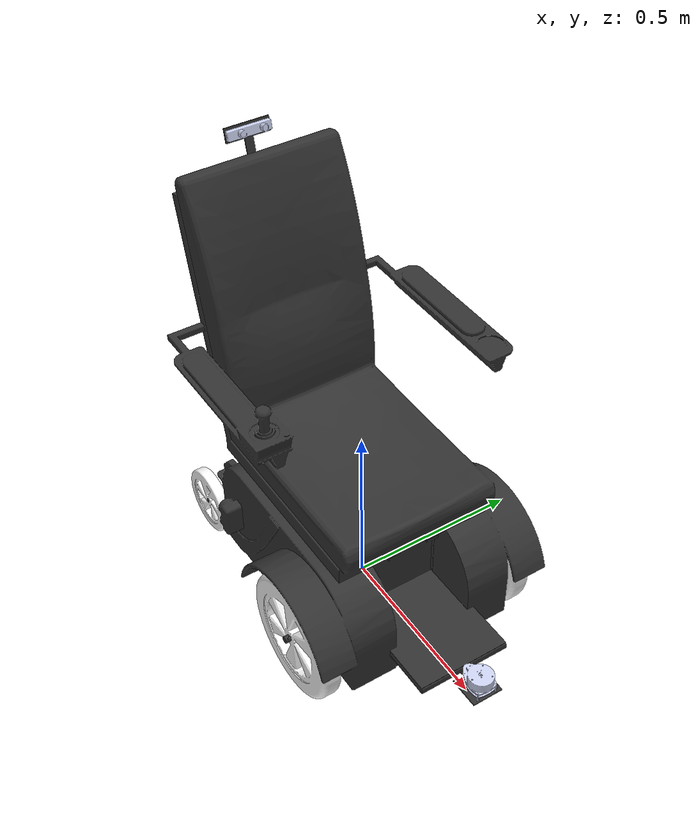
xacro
<?xml version="1.0" encoding="utf-8"?>
<robot name="wheelchair1" xmlns:xacro="http://www.ros.org/wiki/xacro">

  <link name="base_footprint"/>

  <joint name="base_joint" type="fixed">
    <parent link="base_footprint"/>
    <child link="base_link"/>
    <origin xyz="0 0 0" rpy="0 0 0"/>
  </joint>

  <link name="base_link">
    <inertial>
      <origin
        xyz="-0.15177 -0.0026258 0.48729"
        rpy="0 0 0" />
      <mass
        value="65.192" />
      <inertia
        ixx="3.4038"
        ixy="-0.0032099"
        ixz="1.5839"
        iyy="5.0215"
        iyz="0.0029433"
        izz="3.6732" />
    </inertial>
    <visual>
      <origin
        xyz="0 0 0"
        rpy="0 0 0" />
      <geometry>
        <mesh
          filename="package://wheelchair1/meshes/base_link.STL" />
      </geometry>
      <material name="">
        <color rgba="0.19216 0.19216 0.19216 1" />
      </material>
    </visual>
    <collision>
      <origin xyz="0 0 0" rpy="0 0 0" />
      <geometry>
        <mesh filename="package://wheelchair1/meshes/base_link.STL" />
      </geometry>
    </collision>
  </link>
  <link name="left_front_wheel_Link">
    <inertial>
      <origin xyz="-8.13583984423799E-05 -0.00446680997183506 2.7507001420457E-05" rpy="0 0 0" />
      <mass value="4.46699687818255" />
      <inertia
        ixx="0.0433597257536875"
        ixy="-4.45665256534548E-08"
        ixz="-4.38715383980768E-08"
        iyy="0.0843865101683367"
        iyz="1.01838513858603E-08"
        izz="0.0433595856339945" />
    </inertial>
    <visual>
      <origin
        xyz="0 0 0"
        rpy="0 0 0" />
      <geometry>
        <mesh filename="package://wheelchair1/meshes/left_front_wheel_Link.STL" />
      </geometry>
      <material name="">
        <color rgba="1 1 1 1" />
      </material>
    </visual>
    <collision>
      <origin
        xyz="0 0 0"
        rpy="0 0 0" />
      <geometry>
        <mesh filename="package://wheelchair1/meshes/left_front_wheel_Link.STL" />
      </geometry>
    </collision>
  </link>
  <joint name="left_front_wheel_joint" type="continuous">
    <origin
      xyz="0.15658 0.30851 0.078402"
      rpy="0 0 0" />
    <parent link="base_link" />
    <child link="left_front_wheel_Link" />
    <axis xyz="0 -1 0" />
  </joint>
  <link name="right_front_wheel_Link">
    <inertial>
      <origin
        xyz="7.45995085707357E-05 0.00428938437459403 -4.28567622779291E-05"
        rpy="0 0 0" />
      <mass value="4.46699815219975" />
      <inertia
        ixx="0.0433596912477558"
        ixy="-3.30057290906605E-08"
        ixz="-7.50345621653139E-08"
        iyy="0.0843865107088702"
        iyz="3.58379834839502E-08"
        izz="0.0433596215436563" />
    </inertial>
    <visual>
      <origin
        xyz="0 0 0"
        rpy="0 0 0" />
      <geometry>
        <mesh filename="package://wheelchair1/meshes/right_front_wheel_Link.STL" />
      </geometry>
      <material name="">
        <color rgba="1 1 1 1" />
      </material>
    </visual>
    <collision>
      <origin
        xyz="0 0 0"
        rpy="0 0 0" />
      <geometry>
        <mesh filename="package://wheelchair1/meshes/right_front_wheel_Link.STL" />
      </geometry>
    </collision>
  </link>
  <joint name="right_front_wheel_joint" type="continuous">
    <origin xyz="0.15654 -0.30834 0.078402" rpy="0 0 0" />
    <parent link="base_link" />
    <child link="right_front_wheel_Link" />
    <axis xyz="0 1 0" />
  </joint>
  <link name="left_back_wheel_Link">
    <inertial>
      <origin
        xyz="-1.34767247634837E-05 0.0172772191804646 0.000361895426937375"
        rpy="0 0 0" />
      <mass value="0.717859597447507" />
      <inertia
        ixx="0.00223243393544241"
        ixy="-2.68321718047489E-06"
        ixz="-4.44549153500667E-10"
        iyy="0.00433796338811156"
        iyz="-4.95708786242856E-08"
        izz="0.00223243074435807" />
    </inertial>
    <visual>
      <origin xyz="0 0 0" rpy="0 0 0" />
      <geometry>
        <mesh filename="package://wheelchair1/meshes/left_back_wheel_Link.STL" />
      </geometry>
      <material name="">
        <color rgba="1 1 1 1" />
      </material>
    </visual>
    <collision>
      <origin xyz="0 0 0" rpy="0 0 0" />
      <geometry>
        <mesh filename="package://wheelchair1/meshes/left_back_wheel_Link.STL" />
      </geometry>
    </collision>
  </link>
  <joint name="left_back_wheel_joint" type="continuous">
    <origin xyz="-0.48036 0.21288 0.0015072" rpy="0 0 0" />
    <parent link="base_link" />
    <child link="left_back_wheel_Link" />
    <axis xyz="0.0012732 -1 0" />
  </joint>
  <link name="right_back_wheel_Link">
    <inertial>
      <origin
        xyz="2.69005257028665E-05 -0.0172785346301032 -0.00029145920774809"
        rpy="0 0 0" />
      <mass value="0.717859484195088" />
      <inertia
        ixx="0.00223283667050457"
        ixy="-2.92211646009454E-05"
        ixz="3.27830694487852E-09"
        iyy="0.00433756107966922"
        iyz="-2.19230953747351E-07"
        izz="0.0022324301263101" />
    </inertial>
    <visual>
      <origin xyz="0 0 0" rpy="0 0 0" />
      <geometry>
        <mesh filename="package://wheelchair1/meshes/right_back_wheel_Link.STL" />
      </geometry>
      <material name="">
        <color rgba="1 1 1 1" />
      </material>
    </visual>
    <collision>
      <origin xyz="0 0 0" rpy="0 0 0" />
      <geometry>
        <mesh filename="package://wheelchair1/meshes/right_back_wheel_Link.STL" />
      </geometry>
    </collision>
  </link>
  <joint name="right_back_whee_joint" type="continuous">
    <origin xyz="-0.47948 -0.2129 0.00073817" rpy="0 0 0" />
    <parent link="base_link" />
    <child link="right_back_wheel_Link" />
    <axis xyz="-0.013866 0.9999 -8.4705E-05" />
  </joint>
  <link name="laser_Link">
    <inertial>
      <origin
        xyz="-0.00676884851085291 9.1926111087326E-05 -0.00737974646078733"
        rpy="0 0 0" />
      <mass value="1.33076913637071" />
      <inertia
        ixx="0.000614818576356506"
        ixy="-8.01013164167623E-07"
        ixz="-0.000158091205511284"
        iyy="0.000960697335617218"
        iyz="3.09188162552873E-06"
        izz="0.00109825136436899" />
    </inertial>
    <visual>
      <origin xyz="0 0 0" rpy="0 0 0" />
      <geometry>
        <mesh filename="package://wheelchair1/meshes/laser_Link.STL" />
      </geometry>
      <material name="">
        <color  rgba="0.792156862745098 0.819607843137255 0.933333333333333 1" />
      </material>
    </visual>
    <collision>
      <origin xyz="0 0 0" rpy="0 0 0" />
      <geometry>
        <mesh filename="package://wheelchair1/meshes/laser_Link.STL" />
      </geometry>
    </collision>
  </link>
  <joint name="laser_joint" type="fixed">
    <origin xyz="0.55389 0.00084446 0.11008" rpy="0 0 0" />
    <parent link="base_link" />
    <child link="laser_Link" />
    <axis xyz="0 0 0" />
  </joint>
  <link name="camera_Link">
    <inertial>
      <origin
        xyz="-0.00489387820572385 0.00309127033659345 -0.00121973770759487"
        rpy="0 0 0" />
      <mass value="0.0563188298532482" />
      <inertia
        ixx="7.37675247484435E-05"
        ixy="-6.60049249015401E-07"
        ixz="1.25327353728496E-07"
        iyy="5.50633870482408E-06"
        iyz="-1.55958093865376E-07"
        izz="7.32960998295213E-05" />
    </inertial>
    <visual>
      <origin xyz="0 0 0" rpy="0 0 0" />
      <geometry>
        <mesh filename="package://wheelchair1/meshes/camera_Link.STL" />
      </geometry>
      <material name="">
        <color rgba="0.792156862745098 0.819607843137255 0.933333333333333 1" />
      </material>
    </visual>
    <collision>
      <origin xyz="0 0 0" rpy="0 0 0" />
      <geometry>
        <mesh filename="package://wheelchair1/meshes/camera_Link.STL" />
      </geometry>
    </collision>
  </link>
  <joint name="camera_joint" type="fixed">
    <origin
      xyz="-0.51945 0.0027983 1.1545"
      rpy="0 0 0" />
    <parent link="base_link" />
    <child link="camera_Link" />
    <axis xyz="0 0 0" />
  </joint>

  <!-- move controller-->

  <!-- laser description & control -->

</robot>
